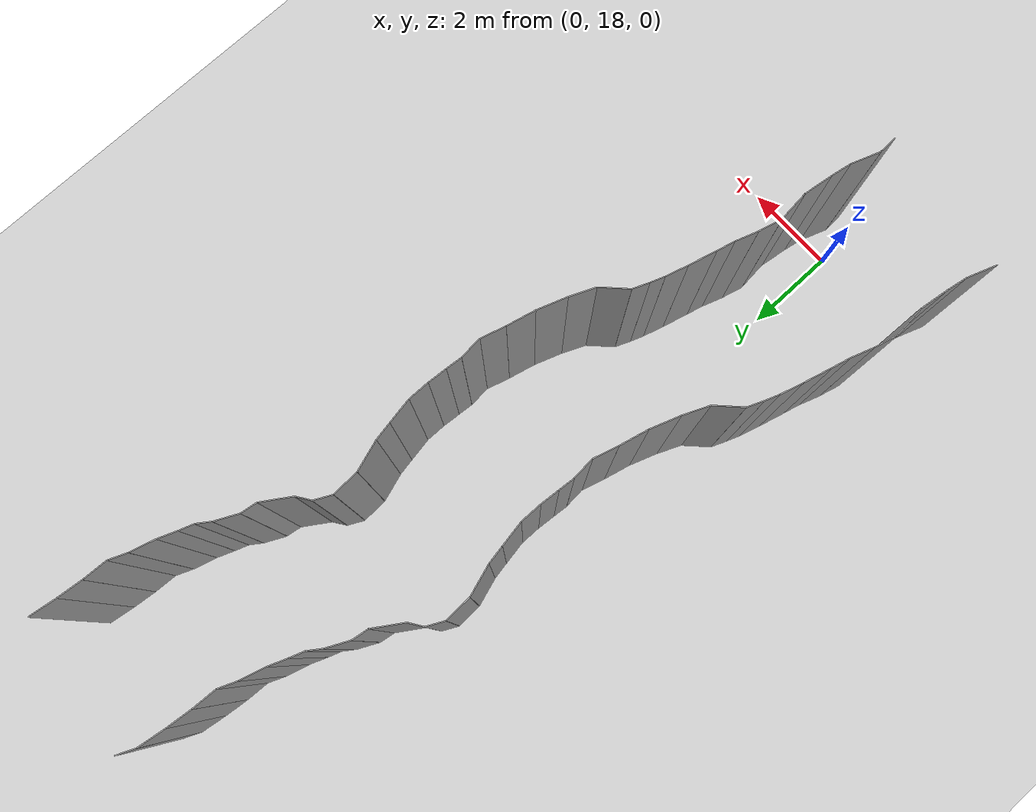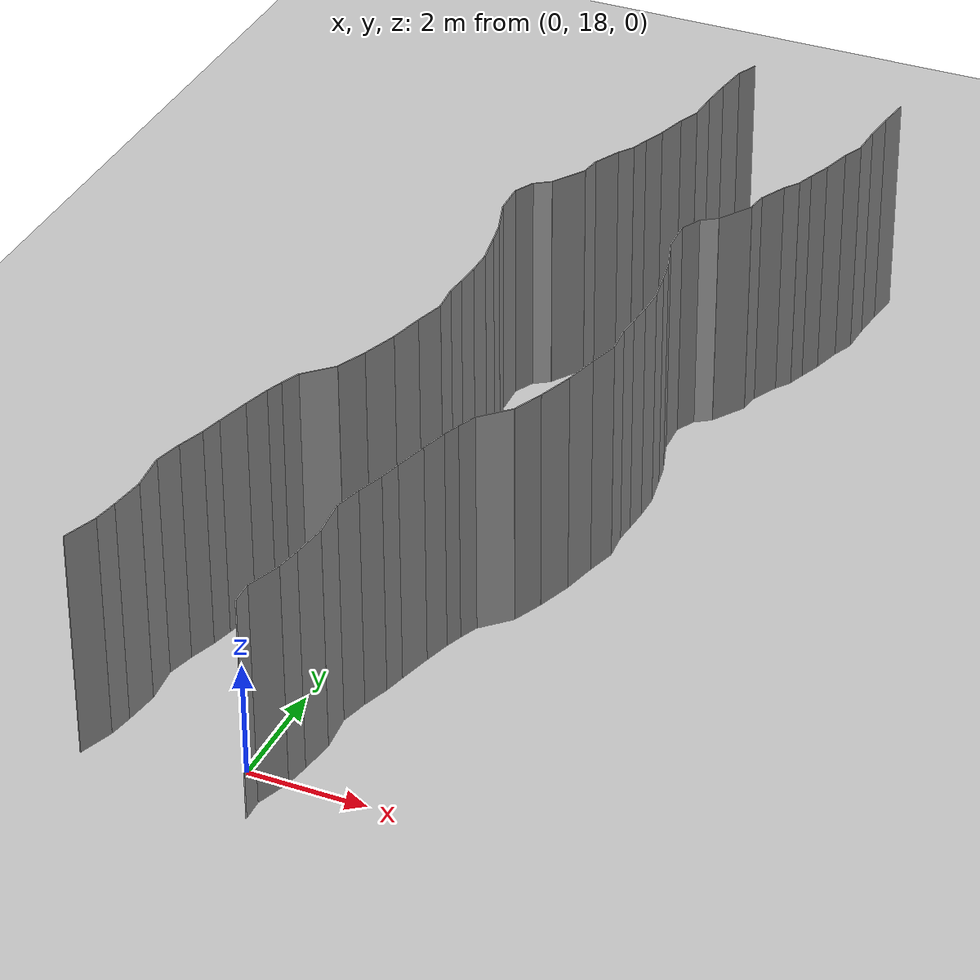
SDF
<sdf version="1.6">
 <world name="default">
  <model name="ground_plane">
   <static>1</static>
   <link name="link">
    <collision name="collision">
     <geometry><plane><normal>0 0 1</normal><size>200 200</size></plane></geometry>
     <surface><friction><ode><mu>100</mu><mu2>50</mu2></ode></friction></surface>
    </collision>
    <visual name="visual">
     <cast_shadows>0</cast_shadows>
     <geometry><plane><normal>0 0 1</normal><size>200 200</size></plane></geometry>
     <material>
      <script><uri>file://media/materials/scripts/gazebo.material</uri><name>Gazebo/Grey</name></script>
     </material>
    </visual>
   </link>
   <pose>0 100 0 0 -0 0</pose>
  </model>
  <model name="wall_73">
   <static>1</static>
   <pose>0.47079789204633915 17.23527186068816 2 0 0 0.03066481382716857</pose>
   <link name="link">
    <collision name="collision"><geometry><box><size>0.02 0.392202867915 4</size></box></geometry></collision>
    <visual name="visual">
     <material>
      <script><name>Gazebo/Grey</name><uri>file://media/materials/scripts/gazebo.material</uri></script>
     </material>
     <geometry><box><size>0.02 0.392202867915 4</size></box></geometry>
    </visual>
   </link>
  </model>
  <model name="wall_74">
   <static>1</static>
   <pose>-2.429012789270348 17.72794647652723 2 0 0 -0.34377072671943365</pose>
   <link name="link">
    <collision name="collision"><geometry><box><size>0.02 0.630203664983 4</size></box></geometry></collision>
    <visual name="visual">
     <material>
      <script><name>Gazebo/Grey</name><uri>file://media/materials/scripts/gazebo.material</uri></script>
     </material>
     <geometry><box><size>0.02 0.630203664983 4</size></box></geometry>
    </visual>
   </link>
  </model>
  <model name="wall_75">
   <static>1</static>
   <pose>0.5709872107296521 17.72794647652723 2 0 0 -0.34377072671943365</pose>
   <link name="link">
    <collision name="collision"><geometry><box><size>0.02 0.630203664983 4</size></box></geometry></collision>
    <visual name="visual">
     <material>
      <script><name>Gazebo/Grey</name><uri>file://media/materials/scripts/gazebo.material</uri></script>
     </material>
     <geometry><box><size>0.02 0.630203664983 4</size></box></geometry>
    </visual>
   </link>
  </model>
  <model name="wall_76">
   <static>1</static>
   <pose>-2.285779154659396 18.23611079602514 2 0 0 -0.17333525755271018</pose>
   <link name="link">
    <collision name="collision"><geometry><box><size>0.02 0.429432933616 4</size></box></geometry></collision>
    <visual name="visual">
     <material>
      <script><name>Gazebo/Grey</name><uri>file://media/materials/scripts/gazebo.material</uri></script>
     </material>
     <geometry><box><size>0.02 0.429432933616 4</size></box></geometry>
    </visual>
   </link>
  </model>
  <model name="wall_77">
   <static>1</static>
   <pose>0.7142208453406038 18.23611079602514 2 0 0 -0.17333525755271018</pose>
   <link name="link">
    <collision name="collision"><geometry><box><size>0.02 0.429432933616 4</size></box></geometry></collision>
    <visual name="visual">
     <material>
      <script><name>Gazebo/Grey</name><uri>file://media/materials/scripts/gazebo.material</uri></script>
     </material>
     <geometry><box><size>0.02 0.429432933616 4</size></box></geometry>
    </visual>
   </link>
  </model>
  <model name="wall_78">
   <static>1</static>
   <pose>-2.207556297556876 18.754506070317365 2 0 0 -0.1334206491302141</pose>
   <link name="link">
    <collision name="collision"><geometry><box><size>0.02 0.619296557812 4</size></box></geometry></collision>
    <visual name="visual">
     <material>
      <script><name>Gazebo/Grey</name><uri>file://media/materials/scripts/gazebo.material</uri></script>
     </material>
     <geometry><box><size>0.02 0.619296557812 4</size></box></geometry>
    </visual>
   </link>
  </model>
  <model name="wall_79">
   <static>1</static>
   <pose>0.7924437024431241 18.754506070317365 2 0 0 -0.1334206491302141</pose>
   <link name="link">
    <collision name="collision"><geometry><box><size>0.02 0.619296557812 4</size></box></geometry></collision>
    <visual name="visual">
     <material>
      <script><name>Gazebo/Grey</name><uri>file://media/materials/scripts/gazebo.material</uri></script>
     </material>
     <geometry><box><size>0.02 0.619296557812 4</size></box></geometry>
    </visual>
   </link>
  </model>
  <model name="wall_80">
   <static>1</static>
   <pose>-2.198059068148868 19.396996494508798 2 0 0 0.09416154381551965</pose>
   <link name="link">
    <collision name="collision"><geometry><box><size>0.02 0.674174731812 4</size></box></geometry></collision>
    <visual name="visual">
     <material>
      <script><name>Gazebo/Grey</name><uri>file://media/materials/scripts/gazebo.material</uri></script>
     </material>
     <geometry><box><size>0.02 0.674174731812 4</size></box></geometry>
    </visual>
   </link>
  </model>
  <model name="wall_81">
   <static>1</static>
   <pose>0.8019409318511319 19.396996494508798 2 0 0 0.09416154381551965</pose>
   <link name="link">
    <collision name="collision"><geometry><box><size>0.02 0.674174731812 4</size></box></geometry></collision>
    <visual name="visual">
     <material>
      <script><name>Gazebo/Grey</name><uri>file://media/materials/scripts/gazebo.material</uri></script>
     </material>
     <geometry><box><size>0.02 0.674174731812 4</size></box></geometry>
    </visual>
   </link>
  </model>
  <model name="wall_82">
   <static>1</static>
   <pose>-2.1681227288812326 19.973130180912506 2 0 0 -0.25082052468963123</pose>
   <link name="link">
    <collision name="collision"><geometry><box><size>0.02 0.496618836627 4</size></box></geometry></collision>
    <visual name="visual">
     <material>
      <script><name>Gazebo/Grey</name><uri>file://media/materials/scripts/gazebo.material</uri></script>
     </material>
     <geometry><box><size>0.02 0.496618836627 4</size></box></geometry>
    </visual>
   </link>
  </model>
  <model name="wall_83">
   <static>1</static>
   <pose>0.8318772711187674 19.973130180912506 2 0 0 -0.25082052468963123</pose>
   <link name="link">
    <collision name="collision"><geometry><box><size>0.02 0.496618836627 4</size></box></geometry></collision>
    <visual name="visual">
     <material>
      <script><name>Gazebo/Grey</name><uri>file://media/materials/scripts/gazebo.material</uri></script>
     </material>
     <geometry><box><size>0.02 0.496618836627 4</size></box></geometry>
    </visual>
   </link>
  </model>
  <model name="wall_84">
   <static>1</static>
   <pose>-2.0279480148808746 20.444975218909242 2 0 0 -0.3273537926749165</pose>
   <link name="link">
    <collision name="collision"><geometry><box><size>0.02 0.48855485788 4</size></box></geometry></collision>
    <visual name="visual">
     <material>
      <script><name>Gazebo/Grey</name><uri>file://media/materials/scripts/gazebo.material</uri></script>
     </material>
     <geometry><box><size>0.02 0.48855485788 4</size></box></geometry>
    </visual>
   </link>
  </model>
  <model name="wall_85">
   <static>1</static>
   <pose>0.9720519851191254 20.444975218909242 2 0 0 -0.3273537926749165</pose>
   <link name="link">
    <collision name="collision"><geometry><box><size>0.02 0.48855485788 4</size></box></geometry></collision>
    <visual name="visual">
     <material>
      <script><name>Gazebo/Grey</name><uri>file://media/materials/scripts/gazebo.material</uri></script>
     </material>
     <geometry><box><size>0.02 0.48855485788 4</size></box></geometry>
    </visual>
   </link>
  </model>
  <model name="wall_86">
   <static>1</static>
   <pose>-1.90286638482155 20.862400339565486 2 0 0 -0.24501466777125927</pose>
   <link name="link">
    <collision name="collision"><geometry><box><size>0.02 0.383698992331 4</size></box></geometry></collision>
    <visual name="visual">
     <material>
      <script><name>Gazebo/Grey</name><uri>file://media/materials/scripts/gazebo.material</uri></script>
     </material>
     <geometry><box><size>0.02 0.383698992331 4</size></box></geometry>
    </visual>
   </link>
  </model>
  <model name="wall_87">
   <static>1</static>
   <pose>1.09713361517845 20.862400339565486 2 0 0 -0.24501466777125927</pose>
   <link name="link">
    <collision name="collision"><geometry><box><size>0.02 0.383698992331 4</size></box></geometry></collision>
    <visual name="visual">
     <material>
      <script><name>Gazebo/Grey</name><uri>file://media/materials/scripts/gazebo.material</uri></script>
     </material>
     <geometry><box><size>0.02 0.383698992331 4</size></box></geometry>
    </visual>
   </link>
  </model>
  <model name="wall_88">
   <static>1</static>
   <pose>-1.7800848566651506 21.339100350235928 2 0 0 -0.2566025694730994</pose>
   <link name="link">
    <collision name="collision"><geometry><box><size>0.02 0.600833268005 4</size></box></geometry></collision>
    <visual name="visual">
     <material>
      <script><name>Gazebo/Grey</name><uri>file://media/materials/scripts/gazebo.material</uri></script>
     </material>
     <geometry><box><size>0.02 0.600833268005 4</size></box></geometry>
    </visual>
   </link>
  </model>
  <model name="wall_89">
   <static>1</static>
   <pose>1.2199151433348494 21.339100350235928 2 0 0 -0.2566025694730994</pose>
   <link name="link">
    <collision name="collision"><geometry><box><size>0.02 0.600833268005 4</size></box></geometry></collision>
    <visual name="visual">
     <material>
      <script><name>Gazebo/Grey</name><uri>file://media/materials/scripts/gazebo.material</uri></script>
     </material>
     <geometry><box><size>0.02 0.600833268005 4</size></box></geometry>
    </visual>
   </link>
  </model>
  <model name="wall_90">
   <static>1</static>
   <pose>-1.6379657221951025 21.85921999298523 2 0 0 -0.2794753116831643</pose>
   <link name="link">
    <collision name="collision"><geometry><box><size>0.02 0.477609723876 4</size></box></geometry></collision>
    <visual name="visual">
     <material>
      <script><name>Gazebo/Grey</name><uri>file://media/materials/scripts/gazebo.material</uri></script>
     </material>
     <geometry><box><size>0.02 0.477609723876 4</size></box></geometry>
    </visual>
   </link>
  </model>
  <model name="wall_91">
   <static>1</static>
   <pose>1.3620342778048975 21.85921999298523 2 0 0 -0.2794753116831643</pose>
   <link name="link">
    <collision name="collision"><geometry><box><size>0.02 0.477609723876 4</size></box></geometry></collision>
    <visual name="visual">
     <material>
      <script><name>Gazebo/Grey</name><uri>file://media/materials/scripts/gazebo.material</uri></script>
     </material>
     <geometry><box><size>0.02 0.477609723876 4</size></box></geometry>
    </visual>
   </link>
  </model>
  <model name="wall_92">
   <static>1</static>
   <pose>-1.5190764910328343 22.23252860548332 2 0 0 -0.3532778761623576</pose>
   <link name="link">
    <collision name="collision"><geometry><box><size>0.02 0.306464743106 4</size></box></geometry></collision>
    <visual name="visual">
     <material>
      <script><name>Gazebo/Grey</name><uri>file://media/materials/scripts/gazebo.material</uri></script>
     </material>
     <geometry><box><size>0.02 0.306464743106 4</size></box></geometry>
    </visual>
   </link>
  </model>
  <model name="wall_93">
   <static>1</static>
   <pose>1.4809235089671657 22.23252860548332 2 0 0 -0.3532778761623576</pose>
   <link name="link">
    <collision name="collision"><geometry><box><size>0.02 0.306464743106 4</size></box></geometry></collision>
    <visual name="visual">
     <material>
      <script><name>Gazebo/Grey</name><uri>file://media/materials/scripts/gazebo.material</uri></script>
     </material>
     <geometry><box><size>0.02 0.306464743106 4</size></box></geometry>
    </visual>
   </link>
  </model>
  <model name="wall_94">
   <static>1</static>
   <pose>-1.3985898350139692 22.540001454107113 2 0 0 -0.39094507726741107</pose>
   <link name="link">
    <collision name="collision"><geometry><box><size>0.02 0.354126136174 4</size></box></geometry></collision>
    <visual name="visual">
     <material>
      <script><name>Gazebo/Grey</name><uri>file://media/materials/scripts/gazebo.material</uri></script>
     </material>
     <geometry><box><size>0.02 0.354126136174 4</size></box></geometry>
    </visual>
   </link>
  </model>
  <model name="wall_95">
   <static>1</static>
   <pose>1.6014101649860308 22.540001454107113 2 0 0 -0.39094507726741107</pose>
   <link name="link">
    <collision name="collision"><geometry><box><size>0.02 0.354126136174 4</size></box></geometry></collision>
    <visual name="visual">
     <material>
      <script><name>Gazebo/Grey</name><uri>file://media/materials/scripts/gazebo.material</uri></script>
     </material>
     <geometry><box><size>0.02 0.354126136174 4</size></box></geometry>
    </visual>
   </link>
  </model>
  <model name="wall_96">
   <static>1</static>
   <pose>-1.1038031918532947 22.926658029527577 2 0 0 -0.7950844123617095</pose>
   <link name="link">
    <collision name="collision"><geometry><box><size>0.02 0.636804428602 4</size></box></geometry></collision>
    <visual name="visual">
     <material>
      <script><name>Gazebo/Grey</name><uri>file://media/materials/scripts/gazebo.material</uri></script>
     </material>
     <geometry><box><size>0.02 0.636804428602 4</size></box></geometry>
    </visual>
   </link>
  </model>
  <model name="wall_97">
   <static>1</static>
   <pose>1.8961968081467053 22.926658029527577 2 0 0 -0.7950844123617095</pose>
   <link name="link">
    <collision name="collision"><geometry><box><size>0.02 0.636804428602 4</size></box></geometry></collision>
    <visual name="visual">
     <material>
      <script><name>Gazebo/Grey</name><uri>file://media/materials/scripts/gazebo.material</uri></script>
     </material>
     <geometry><box><size>0.02 0.636804428602 4</size></box></geometry>
    </visual>
   </link>
  </model>
  <model name="wall_98">
   <static>1</static>
   <pose>-0.7645719313978634 23.40722682984423 2 0 0 -0.4098329376174501</pose>
   <link name="link">
    <collision name="collision"><geometry><box><size>0.02 0.561751648118 4</size></box></geometry></collision>
    <visual name="visual">
     <material>
      <script><name>Gazebo/Grey</name><uri>file://media/materials/scripts/gazebo.material</uri></script>
     </material>
     <geometry><box><size>0.02 0.561751648118 4</size></box></geometry>
    </visual>
   </link>
  </model>
  <model name="wall_99">
   <static>1</static>
   <pose>2.2354280686021366 23.40722682984423 2 0 0 -0.4098329376174501</pose>
   <link name="link">
    <collision name="collision"><geometry><box><size>0.02 0.561751648118 4</size></box></geometry></collision>
    <visual name="visual">
     <material>
      <script><name>Gazebo/Grey</name><uri>file://media/materials/scripts/gazebo.material</uri></script>
     </material>
     <geometry><box><size>0.02 0.561751648118 4</size></box></geometry>
    </visual>
   </link>
  </model>
  <model name="wall_100">
   <static>1</static>
   <pose>-0.546153864179512 23.969919465543754 2 0 0 -0.3358700236475551</pose>
   <link name="link">
    <collision name="collision"><geometry><box><size>0.02 0.646264464287 4</size></box></geometry></collision>
    <visual name="visual">
     <material>
      <script><name>Gazebo/Grey</name><uri>file://media/materials/scripts/gazebo.material</uri></script>
     </material>
     <geometry><box><size>0.02 0.646264464287 4</size></box></geometry>
    </visual>
   </link>
  </model>
  <model name="wall_101">
   <static>1</static>
   <pose>2.453846135820488 23.969919465543754 2 0 0 -0.3358700236475551</pose>
   <link name="link">
    <collision name="collision"><geometry><box><size>0.02 0.646264464287 4</size></box></geometry></collision>
    <visual name="visual">
     <material>
      <script><name>Gazebo/Grey</name><uri>file://media/materials/scripts/gazebo.material</uri></script>
     </material>
     <geometry><box><size>0.02 0.646264464287 4</size></box></geometry>
    </visual>
   </link>
  </model>
  <model name="wall_102">
   <static>1</static>
   <pose>-0.36785763065499777 24.575110717438477 2 0 0 -0.23481202918570898</pose>
   <link name="link">
    <collision name="collision"><geometry><box><size>0.02 0.617164951374 4</size></box></geometry></collision>
    <visual name="visual">
     <material>
      <script><name>Gazebo/Grey</name><uri>file://media/materials/scripts/gazebo.material</uri></script>
     </material>
     <geometry><box><size>0.02 0.617164951374 4</size></box></geometry>
    </visual>
   </link>
  </model>
  <model name="wall_103">
   <static>1</static>
   <pose>2.632142369345002 24.575110717438477 2 0 0 -0.23481202918570898</pose>
   <link name="link">
    <collision name="collision"><geometry><box><size>0.02 0.617164951374 4</size></box></geometry></collision>
    <visual name="visual">
     <material>
      <script><name>Gazebo/Grey</name><uri>file://media/materials/scripts/gazebo.material</uri></script>
     </material>
     <geometry><box><size>0.02 0.617164951374 4</size></box></geometry>
    </visual>
   </link>
  </model>
  <model name="wall_104">
   <static>1</static>
   <pose>-0.22232730513434623 25.13157867954599 2 0 0 -0.28007166719788096</pose>
   <link name="link">
    <collision name="collision"><geometry><box><size>0.02 0.533494431051 4</size></box></geometry></collision>
    <visual name="visual">
     <material>
      <script><name>Gazebo/Grey</name><uri>file://media/materials/scripts/gazebo.material</uri></script>
     </material>
     <geometry><box><size>0.02 0.533494431051 4</size></box></geometry>
    </visual>
   </link>
  </model>
  <model name="wall_105">
   <static>1</static>
   <pose>2.777672694865654 25.13157867954599 2 0 0 -0.28007166719788096</pose>
   <link name="link">
    <collision name="collision"><geometry><box><size>0.02 0.533494431051 4</size></box></geometry></collision>
    <visual name="visual">
     <material>
      <script><name>Gazebo/Grey</name><uri>file://media/materials/scripts/gazebo.material</uri></script>
     </material>
     <geometry><box><size>0.02 0.533494431051 4</size></box></geometry>
    </visual>
   </link>
  </model>
  <model name="wall_106">
   <static>1</static>
   <pose>-0.1675113112830982 25.629568479958518 2 0 0 0.07813794577043989</pose>
   <link name="link">
    <collision name="collision"><geometry><box><size>0.02 0.484751525857 4</size></box></geometry></collision>
    <visual name="visual">
     <material>
      <script><name>Gazebo/Grey</name><uri>file://media/materials/scripts/gazebo.material</uri></script>
     </material>
     <geometry><box><size>0.02 0.484751525857 4</size></box></geometry>
    </visual>
   </link>
  </model>
  <model name="wall_107">
   <static>1</static>
   <pose>2.832488688716902 25.629568479958518 2 0 0 0.07813794577043989</pose>
   <link name="link">
    <collision name="collision"><geometry><box><size>0.02 0.484751525857 4</size></box></geometry></collision>
    <visual name="visual">
     <material>
      <script><name>Gazebo/Grey</name><uri>file://media/materials/scripts/gazebo.material</uri></script>
     </material>
     <geometry><box><size>0.02 0.484751525857 4</size></box></geometry>
    </visual>
   </link>
  </model>
  <model name="wall_108">
   <static>1</static>
   <pose>-0.17195534318883804 26.041973512342768 2 0 0 -0.08456418187763717</pose>
   <link name="link">
    <collision name="collision"><geometry><box><size>0.02 0.342762454973 4</size></box></geometry></collision>
    <visual name="visual">
     <material>
      <script><name>Gazebo/Grey</name><uri>file://media/materials/scripts/gazebo.material</uri></script>
     </material>
     <geometry><box><size>0.02 0.342762454973 4</size></box></geometry>
    </visual>
   </link>
  </model>
  <model name="wall_109">
   <static>1</static>
   <pose>2.828044656811162 26.041973512342768 2 0 0 -0.08456418187763717</pose>
   <link name="link">
    <collision name="collision"><geometry><box><size>0.02 0.342762454973 4</size></box></geometry></collision>
    <visual name="visual">
     <material>
      <script><name>Gazebo/Grey</name><uri>file://media/materials/scripts/gazebo.material</uri></script>
     </material>
     <geometry><box><size>0.02 0.342762454973 4</size></box></geometry>
    </visual>
   </link>
  </model>
  <model name="wall_110">
   <static>1</static>
   <pose>-0.142123488426088 26.41793425056288 2 0 0 -0.07469998744823031</pose>
   <link name="link">
    <collision name="collision"><geometry><box><size>0.02 0.411531512975 4</size></box></geometry></collision>
    <visual name="visual">
     <material>
      <script><name>Gazebo/Grey</name><uri>file://media/materials/scripts/gazebo.material</uri></script>
     </material>
     <geometry><box><size>0.02 0.411531512975 4</size></box></geometry>
    </visual>
   </link>
  </model>
  <model name="wall_111">
   <static>1</static>
   <pose>2.857876511573912 26.41793425056288 2 0 0 -0.07469998744823031</pose>
   <link name="link">
    <collision name="collision"><geometry><box><size>0.02 0.411531512975 4</size></box></geometry></collision>
    <visual name="visual">
     <material>
      <script><name>Gazebo/Grey</name><uri>file://media/materials/scripts/gazebo.material</uri></script>
     </material>
     <geometry><box><size>0.02 0.411531512975 4</size></box></geometry>
    </visual>
   </link>
  </model>
  <model name="wall_112">
   <static>1</static>
   <pose>-0.12403619103414053 26.85166723277148 2 0 0 -0.011948658400512785</pose>
   <link name="link">
    <collision name="collision"><geometry><box><size>0.02 0.457114739525 4</size></box></geometry></collision>
    <visual name="visual">
     <material>
      <script><name>Gazebo/Grey</name><uri>file://media/materials/scripts/gazebo.material</uri></script>
     </material>
     <geometry><box><size>0.02 0.457114739525 4</size></box></geometry>
    </visual>
   </link>
  </model>
  <model name="wall_113">
   <static>1</static>
   <pose>2.8759638089658597 26.85166723277148 2 0 0 -0.011948658400512785</pose>
   <link name="link">
    <collision name="collision"><geometry><box><size>0.02 0.457114739525 4</size></box></geometry></collision>
    <visual name="visual">
     <material>
      <script><name>Gazebo/Grey</name><uri>file://media/materials/scripts/gazebo.material</uri></script>
     </material>
     <geometry><box><size>0.02 0.457114739525 4</size></box></geometry>
    </visual>
   </link>
  </model>
  <model name="wall_114">
   <static>1</static>
   <pose>-0.1690009502107081 27.351588292799192 2 0 0 0.17397547546250924</pose>
   <link name="link">
    <collision name="collision"><geometry><box><size>0.02 0.551078877614 4</size></box></geometry></collision>
    <visual name="visual">
     <material>
      <script><name>Gazebo/Grey</name><uri>file://media/materials/scripts/gazebo.material</uri></script>
     </material>
     <geometry><box><size>0.02 0.551078877614 4</size></box></geometry>
    </visual>
   </link>
  </model>
  <model name="wall_115">
   <static>1</static>
   <pose>2.830999049789292 27.351588292799192 2 0 0 0.17397547546250924</pose>
   <link name="link">
    <collision name="collision"><geometry><box><size>0.02 0.551078877614 4</size></box></geometry></collision>
    <visual name="visual">
     <material>
      <script><name>Gazebo/Grey</name><uri>file://media/materials/scripts/gazebo.material</uri></script>
     </material>
     <geometry><box><size>0.02 0.551078877614 4</size></box></geometry>
    </visual>
   </link>
  </model>
  <model name="wall_116">
   <static>1</static>
   <pose>-0.25153936845556646 27.814258279496148 2 0 0 0.18017113954568123</pose>
   <link name="link">
    <collision name="collision"><geometry><box><size>0.02 0.388874660853 4</size></box></geometry></collision>
    <visual name="visual">
     <material>
      <script><name>Gazebo/Grey</name><uri>file://media/materials/scripts/gazebo.material</uri></script>
     </material>
     <geometry><box><size>0.02 0.388874660853 4</size></box></geometry>
    </visual>
   </link>
  </model>
  <model name="wall_117">
   <static>1</static>
   <pose>2.7484606315444333 27.814258279496148 2 0 0 0.18017113954568123</pose>
   <link name="link">
    <collision name="collision"><geometry><box><size>0.02 0.388874660853 4</size></box></geometry></collision>
    <visual name="visual">
     <material>
      <script><name>Gazebo/Grey</name><uri>file://media/materials/scripts/gazebo.material</uri></script>
     </material>
     <geometry><box><size>0.02 0.388874660853 4</size></box></geometry>
    </visual>
   </link>
  </model>
  <model name="wall_118">
   <static>1</static>
   <pose>-0.39011861269366027 28.321601621915036 2 0 0 0.31714562935596324</pose>
   <link name="link">
    <collision name="collision"><geometry><box><size>0.02 0.66528485124 4</size></box></geometry></collision>
    <visual name="visual">
     <material>
      <script><name>Gazebo/Grey</name><uri>file://media/materials/scripts/gazebo.material</uri></script>
     </material>
     <geometry><box><size>0.02 0.66528485124 4</size></box></geometry>
    </visual>
   </link>
  </model>
  <model name="wall_119">
   <static>1</static>
   <pose>2.6098813873063396 28.321601621915036 2 0 0 0.31714562935596324</pose>
   <link name="link">
    <collision name="collision"><geometry><box><size>0.02 0.66528485124 4</size></box></geometry></collision>
    <visual name="visual">
     <material>
      <script><name>Gazebo/Grey</name><uri>file://media/materials/scripts/gazebo.material</uri></script>
     </material>
     <geometry><box><size>0.02 0.66528485124 4</size></box></geometry>
    </visual>
   </link>
  </model>
  <model name="wall_120">
   <static>1</static>
   <pose>-0.5059266456673343 28.925332771323646 2 0 0 0.041937478540263064</pose>
   <link name="link">
    <collision name="collision"><geometry><box><size>0.02 0.575861900947 4</size></box></geometry></collision>
    <visual name="visual">
     <material>
      <script><name>Gazebo/Grey</name><uri>file://media/materials/scripts/gazebo.material</uri></script>
     </material>
     <geometry><box><size>0.02 0.575861900947 4</size></box></geometry>
    </visual>
   </link>
  </model>
  <model name="wall_121">
   <static>1</static>
   <pose>2.4940733543326656 28.925332771323646 2 0 0 0.041937478540263064</pose>
   <link name="link">
    <collision name="collision"><geometry><box><size>0.02 0.575861900947 4</size></box></geometry></collision>
    <visual name="visual">
     <material>
      <script><name>Gazebo/Grey</name><uri>file://media/materials/scripts/gazebo.material</uri></script>
     </material>
     <geometry><box><size>0.02 0.575861900947 4</size></box></geometry>
    </visual>
   </link>
  </model>
  <model name="wall_122">
   <static>1</static>
   <pose>-0.43110213157265653 29.385533097077804 2 0 0 -0.4665869086769961</pose>
   <link name="link">
    <collision name="collision"><geometry><box><size>0.02 0.386341576987 4</size></box></geometry></collision>
    <visual name="visual">
     <material>
      <script><name>Gazebo/Grey</name><uri>file://media/materials/scripts/gazebo.material</uri></script>
     </material>
     <geometry><box><size>0.02 0.386341576987 4</size></box></geometry>
    </visual>
   </link>
  </model>
  <model name="wall_123">
   <static>1</static>
   <pose>2.5688978684273436 29.385533097077804 2 0 0 -0.4665869086769961</pose>
   <link name="link">
    <collision name="collision"><geometry><box><size>0.02 0.386341576987 4</size></box></geometry></collision>
    <visual name="visual">
     <material>
      <script><name>Gazebo/Grey</name><uri>file://media/materials/scripts/gazebo.material</uri></script>
     </material>
     <geometry><box><size>0.02 0.386341576987 4</size></box></geometry>
    </visual>
   </link>
  </model>
  <model name="wall_124">
   <static>1</static>
   <pose>-0.2102959030114848 29.649375493355915 2 0 0 -0.9722883301738334</pose>
   <link name="link">
    <collision name="collision"><geometry><box><size>0.02 0.324168143639 4</size></box></geometry></collision>
    <visual name="visual">
     <material>
      <script><name>Gazebo/Grey</name><uri>file://media/materials/scripts/gazebo.material</uri></script>
     </material>
     <geometry><box><size>0.02 0.324168143639 4</size></box></geometry>
    </visual>
   </link>
  </model>
  <model name="wall_125">
   <static>1</static>
   <pose>2.7897040969885154 29.649375493355915 2 0 0 -0.9722883301738334</pose>
   <link name="link">
    <collision name="collision"><geometry><box><size>0.02 0.324168143639 4</size></box></geometry></collision>
    <visual name="visual">
     <material>
      <script><name>Gazebo/Grey</name><uri>file://media/materials/scripts/gazebo.material</uri></script>
     </material>
     <geometry><box><size>0.02 0.324168143639 4</size></box></geometry>
    </visual>
   </link>
  </model>
  <model name="wall_126">
   <static>1</static>
   <pose>0.1067119509097281 30.02099155969699 2 0 0 -0.5786420366634472</pose>
   <link name="link">
    <collision name="collision"><geometry><box><size>0.02 0.669599077784 4</size></box></geometry></collision>
    <visual name="visual">
     <material>
      <script><name>Gazebo/Grey</name><uri>file://media/materials/scripts/gazebo.material</uri></script>
     </material>
     <geometry><box><size>0.02 0.669599077784 4</size></box></geometry>
    </visual>
   </link>
  </model>
  <model name="wall_127">
   <static>1</static>
   <pose>3.106711950909728 30.02099155969699 2 0 0 -0.5786420366634472</pose>
   <link name="link">
    <collision name="collision"><geometry><box><size>0.02 0.669599077784 4</size></box></geometry></collision>
    <visual name="visual">
     <material>
      <script><name>Gazebo/Grey</name><uri>file://media/materials/scripts/gazebo.material</uri></script>
     </material>
     <geometry><box><size>0.02 0.669599077784 4</size></box></geometry>
    </visual>
   </link>
  </model>
  <model name="wall_128">
   <static>1</static>
   <pose>0.31486260372887165 30.473054485445367 2 0 0 -0.14483325685799384</pose>
   <link name="link">
    <collision name="collision"><geometry><box><size>0.02 0.347168293011 4</size></box></geometry></collision>
    <visual name="visual">
     <material>
      <script><name>Gazebo/Grey</name><uri>file://media/materials/scripts/gazebo.material</uri></script>
     </material>
     <geometry><box><size>0.02 0.347168293011 4</size></box></geometry>
    </visual>
   </link>
  </model>
  <model name="wall_129">
   <static>1</static>
   <pose>3.3148626037288715 30.473054485445367 2 0 0 -0.14483325685799384</pose>
   <link name="link">
    <collision name="collision"><geometry><box><size>0.02 0.347168293011 4</size></box></geometry></collision>
    <visual name="visual">
     <material>
      <script><name>Gazebo/Grey</name><uri>file://media/materials/scripts/gazebo.material</uri></script>
     </material>
     <geometry><box><size>0.02 0.347168293011 4</size></box></geometry>
    </visual>
   </link>
  </model>
  <model name="wall_130">
   <static>1</static>
   <pose>0.4514215933003867 30.87313420249712 2 0 0 -0.45431742714780354</pose>
   <link name="link">
    <collision name="collision"><geometry><box><size>0.02 0.508174857397 4</size></box></geometry></collision>
    <visual name="visual">
     <material>
      <script><name>Gazebo/Grey</name><uri>file://media/materials/scripts/gazebo.material</uri></script>
     </material>
     <geometry><box><size>0.02 0.508174857397 4</size></box></geometry>
    </visual>
   </link>
  </model>
  <model name="wall_131">
   <static>1</static>
   <pose>3.451421593300387 30.87313420249712 2 0 0 -0.45431742714780354</pose>
   <link name="link">
    <collision name="collision"><geometry><box><size>0.02 0.508174857397 4</size></box></geometry></collision>
    <visual name="visual">
     <material>
      <script><name>Gazebo/Grey</name><uri>file://media/materials/scripts/gazebo.material</uri></script>
     </material>
     <geometry><box><size>0.02 0.508174857397 4</size></box></geometry>
    </visual>
   </link>
  </model>
  <model name="wall_132">
   <static>1</static>
   <pose>0.6532678988495347 31.230644554368396 2 0 0 -0.610217345123752</pose>
   <link name="link">
    <collision name="collision"><geometry><box><size>0.02 0.315298718233 4</size></box></geometry></collision>
    <visual name="visual">
     <material>
      <script><name>Gazebo/Grey</name><uri>file://media/materials/scripts/gazebo.material</uri></script>
     </material>
     <geometry><box><size>0.02 0.315298718233 4</size></box></geometry>
    </visual>
   </link>
  </model>
  <model name="wall_133">
   <static>1</static>
   <pose>3.653267898849535 31.230644554368396 2 0 0 -0.610217345123752</pose>
   <link name="link">
    <collision name="collision"><geometry><box><size>0.02 0.315298718233 4</size></box></geometry></collision>
    <visual name="visual">
     <material>
      <script><name>Gazebo/Grey</name><uri>file://media/materials/scripts/gazebo.material</uri></script>
     </material>
     <geometry><box><size>0.02 0.315298718233 4</size></box></geometry>
    </visual>
   </link>
  </model>
  <model name="wall_134">
   <static>1</static>
   <pose>0.7947630257455951 31.505468767041684 2 0 0 -0.3378088874452775</pose>
   <link name="link">
    <collision name="collision"><geometry><box><size>0.02 0.308700512894 4</size></box></geometry></collision>
    <visual name="visual">
     <material>
      <script><name>Gazebo/Grey</name><uri>file://media/materials/scripts/gazebo.material</uri></script>
     </material>
     <geometry><box><size>0.02 0.308700512894 4</size></box></geometry>
    </visual>
   </link>
  </model>
  <model name="wall_135">
   <static>1</static>
   <pose>3.794763025745595 31.505468767041684 2 0 0 -0.3378088874452775</pose>
   <link name="link">
    <collision name="collision"><geometry><box><size>0.02 0.308700512894 4</size></box></geometry></collision>
    <visual name="visual">
     <material>
      <script><name>Gazebo/Grey</name><uri>file://media/materials/scripts/gazebo.material</uri></script>
     </material>
     <geometry><box><size>0.02 0.308700512894 4</size></box></geometry>
    </visual>
   </link>
  </model>
  <model name="wall_136">
   <static>1</static>
   <pose>0.9194330781109062 31.840020725768316 2 0 0 -0.3710950648190847</pose>
   <link name="link">
    <collision name="collision"><geometry><box><size>0.02 0.405448773556 4</size></box></geometry></collision>
    <visual name="visual">
     <material>
      <script><name>Gazebo/Grey</name><uri>file://media/materials/scripts/gazebo.material</uri></script>
     </material>
     <geometry><box><size>0.02 0.405448773556 4</size></box></geometry>
    </visual>
   </link>
  </model>
  <model name="wall_137">
   <static>1</static>
   <pose>3.9194330781109064 31.840020725768316 2 0 0 -0.3710950648190847</pose>
   <link name="link">
    <collision name="collision"><geometry><box><size>0.02 0.405448773556 4</size></box></geometry></collision>
    <visual name="visual">
     <material>
      <script><name>Gazebo/Grey</name><uri>file://media/materials/scripts/gazebo.material</uri></script>
     </material>
     <geometry><box><size>0.02 0.405448773556 4</size></box></geometry>
    </visual>
   </link>
  </model>
  <model name="wall_138">
   <static>1</static>
   <pose>1.0647178007305282 32.284199711542435 2 0 0 -0.2740925559627541</pose>
   <link name="link">
    <collision name="collision"><geometry><box><size>0.02 0.530303353831 4</size></box></geometry></collision>
    <visual name="visual">
     <material>
      <script><name>Gazebo/Grey</name><uri>file://media/materials/scripts/gazebo.material</uri></script>
     </material>
     <geometry><box><size>0.02 0.530303353831 4</size></box></geometry>
    </visual>
   </link>
  </model>
  <model name="wall_139">
   <static>1</static>
   <pose>4.064717800730528 32.284199711542435 2 0 0 -0.2740925559627541</pose>
   <link name="link">
    <collision name="collision"><geometry><box><size>0.02 0.530303353831 4</size></box></geometry></collision>
    <visual name="visual">
     <material>
      <script><name>Gazebo/Grey</name><uri>file://media/materials/scripts/gazebo.material</uri></script>
     </material>
     <geometry><box><size>0.02 0.530303353831 4</size></box></geometry>
    </visual>
   </link>
  </model>
  <model name="wall_140">
   <static>1</static>
   <pose>1.2120086738072753 32.723614303849764 2 0 0 -0.38916908355724145</pose>
   <link name="link">
    <collision name="collision"><geometry><box><size>0.02 0.398088629098 4</size></box></geometry></collision>
    <visual name="visual">
     <material>
      <script><name>Gazebo/Grey</name><uri>file://media/materials/scripts/gazebo.material</uri></script>
     </material>
     <geometry><box><size>0.02 0.398088629098 4</size></box></geometry>
    </visual>
   </link>
  </model>
  <model name="wall_141">
   <static>1</static>
   <pose>4.212008673807276 32.723614303849764 2 0 0 -0.38916908355724145</pose>
   <link name="link">
    <collision name="collision"><geometry><box><size>0.02 0.398088629098 4</size></box></geometry></collision>
    <visual name="visual">
     <material>
      <script><name>Gazebo/Grey</name><uri>file://media/materials/scripts/gazebo.material</uri></script>
     </material>
     <geometry><box><size>0.02 0.398088629098 4</size></box></geometry>
    </visual>
   </link>
  </model>
  <model name="wall_142">
   <static>1</static>
   <pose>1.2992390896676351 33.170256430303944 2 0 0 -0.044579581039774524</pose>
   <link name="link">
    <collision name="collision"><geometry><box><size>0.02 0.525484914112 4</size></box></geometry></collision>
    <visual name="visual">
     <material>
      <script><name>Gazebo/Grey</name><uri>file://media/materials/scripts/gazebo.material</uri></script>
     </material>
     <geometry><box><size>0.02 0.525484914112 4</size></box></geometry>
    </visual>
   </link>
  </model>
  <model name="wall_143">
   <static>1</static>
   <pose>4.299239089667635 33.170256430303944 2 0 0 -0.044579581039774524</pose>
   <link name="link">
    <collision name="collision"><geometry><box><size>0.02 0.525484914112 4</size></box></geometry></collision>
    <visual name="visual">
     <material>
      <script><name>Gazebo/Grey</name><uri>file://media/materials/scripts/gazebo.material</uri></script>
     </material>
     <geometry><box><size>0.02 0.525484914112 4</size></box></geometry>
    </visual>
   </link>
  </model>
  <model name="wall_144">
   <static>1</static>
   <pose>1.3376820405400343 33.69827709532765 2 0 0 -0.10033960154815738</pose>
   <link name="link">
    <collision name="collision"><geometry><box><size>0.02 0.533763207686 4</size></box></geometry></collision>
    <visual name="visual">
     <material>
      <script><name>Gazebo/Grey</name><uri>file://media/materials/scripts/gazebo.material</uri></script>
     </material>
     <geometry><box><size>0.02 0.533763207686 4</size></box></geometry>
    </visual>
   </link>
  </model>
  <model name="wall_145">
   <static>1</static>
   <pose>4.3376820405400345 33.69827709532765 2 0 0 -0.10033960154815738</pose>
   <link name="link">
    <collision name="collision"><geometry><box><size>0.02 0.533763207686 4</size></box></geometry></collision>
    <visual name="visual">
     <material>
      <script><name>Gazebo/Grey</name><uri>file://media/materials/scripts/gazebo.material</uri></script>
     </material>
     <geometry><box><size>0.02 0.533763207686 4</size></box></geometry>
    </visual>
   </link>
  </model>
  <model name="wall_146">
   <static>1</static>
   <pose>1.404993555561151 34.252870699609005 2 0 0 -0.13946923629858</pose>
   <link name="link">
    <collision name="collision"><geometry><box><size>0.02 0.58377724382 4</size></box></geometry></collision>
    <visual name="visual">
     <material>
      <script><name>Gazebo/Grey</name><uri>file://media/materials/scripts/gazebo.material</uri></script>
     </material>
     <geometry><box><size>0.02 0.58377724382 4</size></box></geometry>
    </visual>
   </link>
  </model>
  <model name="wall_147">
   <static>1</static>
   <pose>4.404993555561151 34.252870699609005 2 0 0 -0.13946923629858</pose>
   <link name="link">
    <collision name="collision"><geometry><box><size>0.02 0.58377724382 4</size></box></geometry></collision>
    <visual name="visual">
     <material>
      <script><name>Gazebo/Grey</name><uri>file://media/materials/scripts/gazebo.material</uri></script>
     </material>
     <geometry><box><size>0.02 0.58377724382 4</size></box></geometry>
    </visual>
   </link>
  </model>
  <model name="wall_148">
   <static>1</static>
   <pose>1.5255261121978179 34.72610325198377 2 0 0 -0.40956759334759857</pose>
   <link name="link">
    <collision name="collision"><geometry><box><size>0.02 0.401568903811 4</size></box></geometry></collision>
    <visual name="visual">
     <material>
      <script><name>Gazebo/Grey</name><uri>file://media/materials/scripts/gazebo.material</uri></script>
     </material>
     <geometry><box><size>0.02 0.401568903811 4</size></box></geometry>
    </visual>
   </link>
  </model>
 </world>
</sdf>
